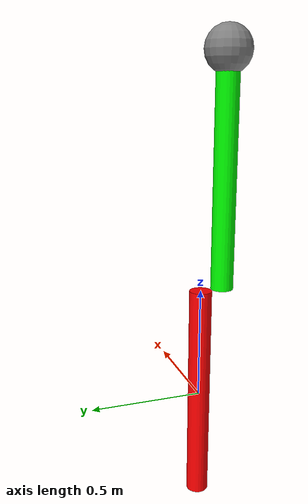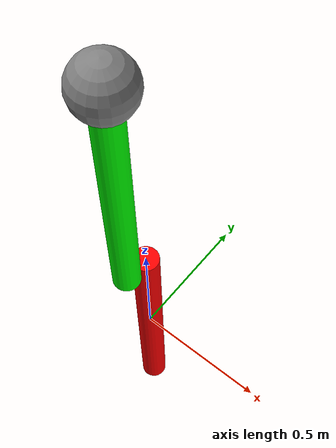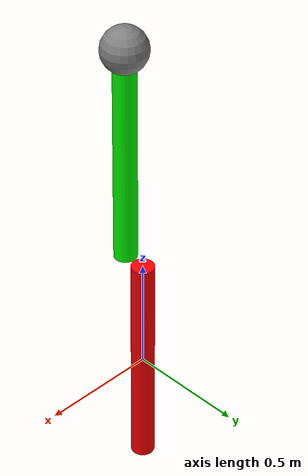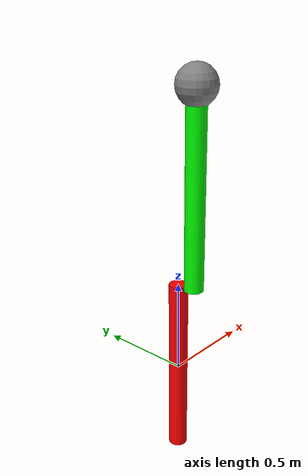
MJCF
<!-- https://mujoco.readthedocs.io/en/latest/overview.html?highlight=hello.xml#examples -->
<mujoco>
  <option gravity = "0 0 -9.81" />
   <worldbody>
      <light diffuse="0 0 0" pos="0 0 10" dir="0 0 -1"/>
      <body pos="0 0 0" euler="0 180 0">
         <joint name="joint0" type="hinge" axis = "0 -1 0" pos = "0 0 0.5"/>
         <geom type="cylinder" size="0.05 0.5" rgba="1 0 0 1" mass="1"/>
         <body pos="0 -0.1 -1" euler="0 0 0">
           <joint name="joint1" type="hinge" axis = "0 -1 0" pos = "0 0 0.5"/>
           <geom type="cylinder" size="0.05 0.5" rgba="0 1 0 1" mass="1"/>
           <site name="tip" size="0.1" pos="0 0 -0.5"/>
         </body>
      </body>
    </worldbody>
   <actuator>
     <motor name="torque0" joint="joint0"  gear="1" />
     <motor name="torque1" joint="joint1"  gear="1" />
   </actuator>
  <sensor>
     <framepos objtype="site" objname="tip"/>
   </sensor>
</mujoco>
